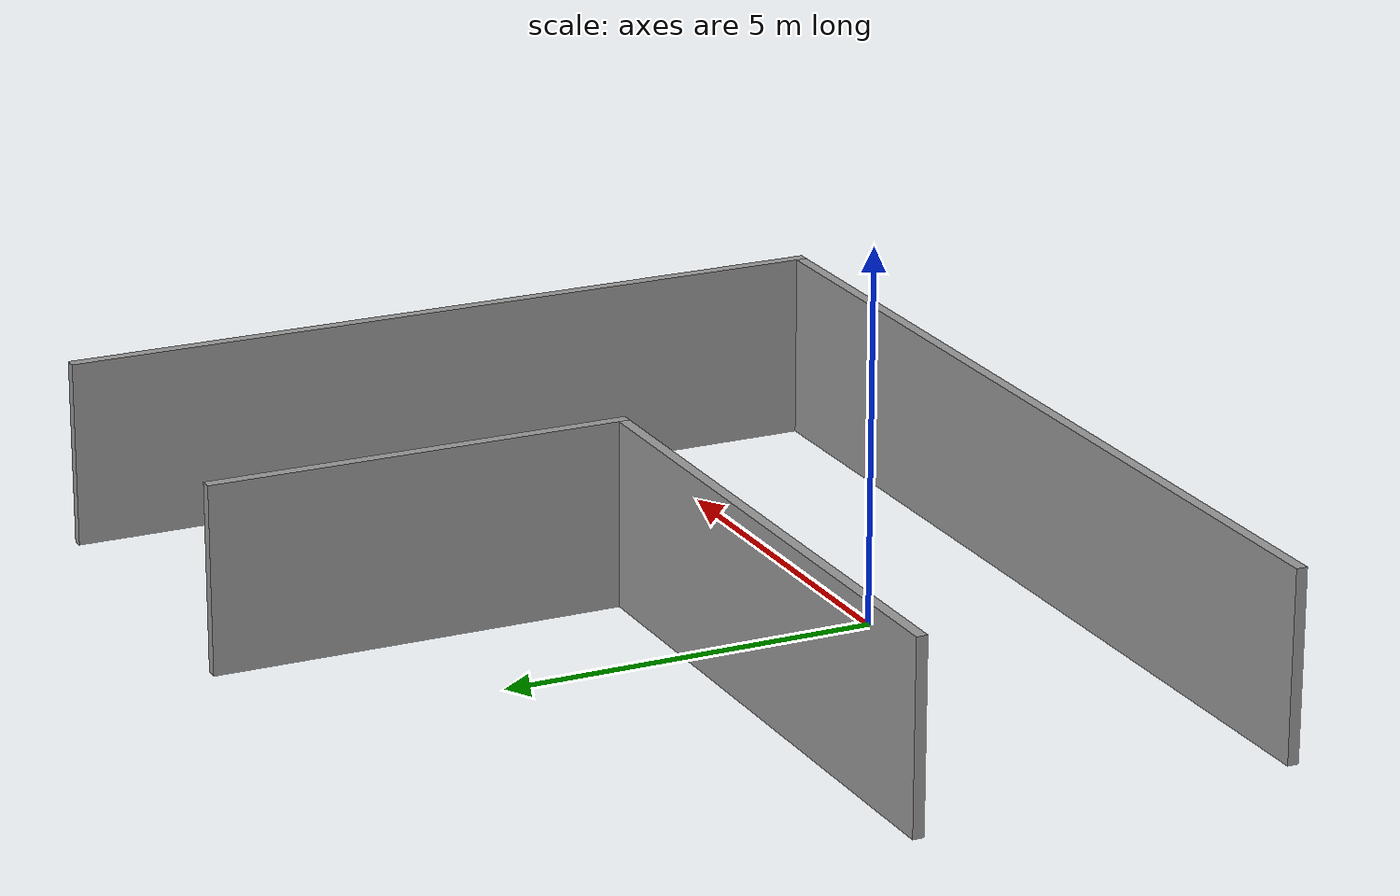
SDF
<?xml version='1.0'?>
<sdf version='1.7'>
  <model name='warehouse_hallway'>
    <pose>0.5 2.75 0 0 -0 0</pose>
    <link name='Wall_0'>
      <collision name='Wall_0_Collision'>
        <geometry>
          <box>
            <size>13.15 0.15 2.5</size>
          </box>
        </geometry>
        <pose>0 0 1.25 0 -0 0</pose>
      </collision>
      <visual name='Wall_0_Visual'>
        <pose>0 0 1.25 0 -0 0</pose>
        <geometry>
          <box>
            <size>13.15 0.15 2.5</size>
          </box>
        </geometry>
        <material>
          <script>
            <uri>file://media/materials/scripts/gazebo.material</uri>
            <name>Gazebo/Grey</name>
          </script>
          <ambient>1 1 1 1</ambient>
        </material>
        <meta>
          <layer>0</layer>
        </meta>
      </visual>
      <pose>-0 -5.25 0 0 -0 3.14159</pose>
    </link>
    <link name='Wall_3'>
      <collision name='Wall_3_Collision'>
        <geometry>
          <box>
            <size>8.15 0.15 2.5</size>
          </box>
        </geometry>
        <pose>0 0 1.25 0 -0 0</pose>
      </collision>
      <visual name='Wall_3_Visual'>
        <pose>0 0 1.25 0 -0 0</pose>
        <geometry>
          <box>
            <size>8.15 0.15 2.5</size>
          </box>
        </geometry>
        <material>
          <script>
            <uri>file://media/materials/scripts/gazebo.material</uri>
            <name>Gazebo/Grey</name>
          </script>
          <ambient>1 1 1 1</ambient>
        </material>
        <meta>
          <layer>0</layer>
        </meta>
      </visual>
      <pose>-2.5 -0.25 0 0 -0 3.14159</pose>
    </link>
    <link name='Wall_6'>
      <collision name='Wall_6_Collision'>
        <geometry>
          <box>
            <size>10.65 0.15 2.5</size>
          </box>
        </geometry>
        <pose>0 0 1.25 0 -0 0</pose>
      </collision>
      <visual name='Wall_6_Visual'>
        <pose>0 0 1.25 0 -0 0</pose>
        <geometry>
          <box>
            <size>10.65 0.15 2.5</size>
          </box>
        </geometry>
        <material>
          <script>
            <uri>file://media/materials/scripts/gazebo.material</uri>
            <name>Gazebo/Grey</name>
          </script>
          <ambient>1 1 1 1</ambient>
        </material>
        <meta>
          <layer>0</layer>
        </meta>
      </visual>
      <pose>6.5 -0 0 0 -0 1.5708</pose>
    </link>
    <link name='Wall_8'>
      <collision name='Wall_8_Collision'>
        <geometry>
          <box>
            <size>5.65 0.15 2.5</size>
          </box>
        </geometry>
        <pose>0 0 1.25 0 -0 0</pose>
      </collision>
      <visual name='Wall_8_Visual'>
        <pose>0 0 1.25 0 -0 0</pose>
        <geometry>
          <box>
            <size>5.65 0.15 2.5</size>
          </box>
        </geometry>
        <material>
          <script>
            <uri>file://media/materials/scripts/gazebo.material</uri>
            <name>Gazebo/Grey</name>
          </script>
          <ambient>1 1 1 1</ambient>
        </material>
        <meta>
          <layer>0</layer>
        </meta>
      </visual>
      <pose>1.5 2.5 0 0 -0 1.5708</pose>
    </link>
    <static>1</static>
  </model>
</sdf>
